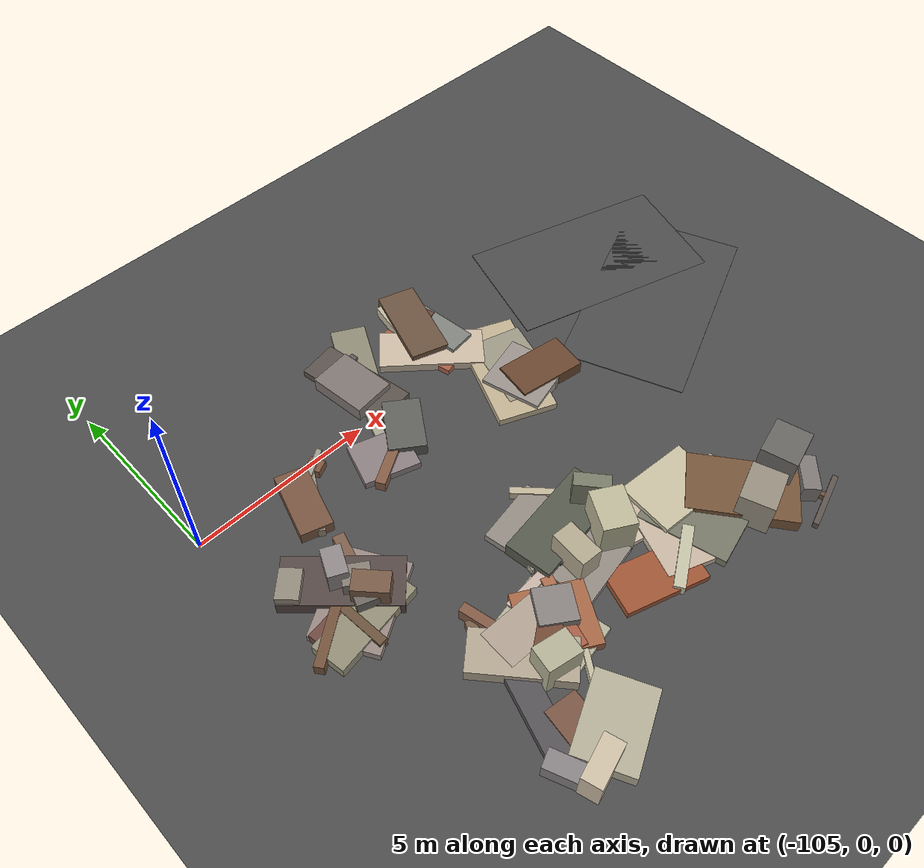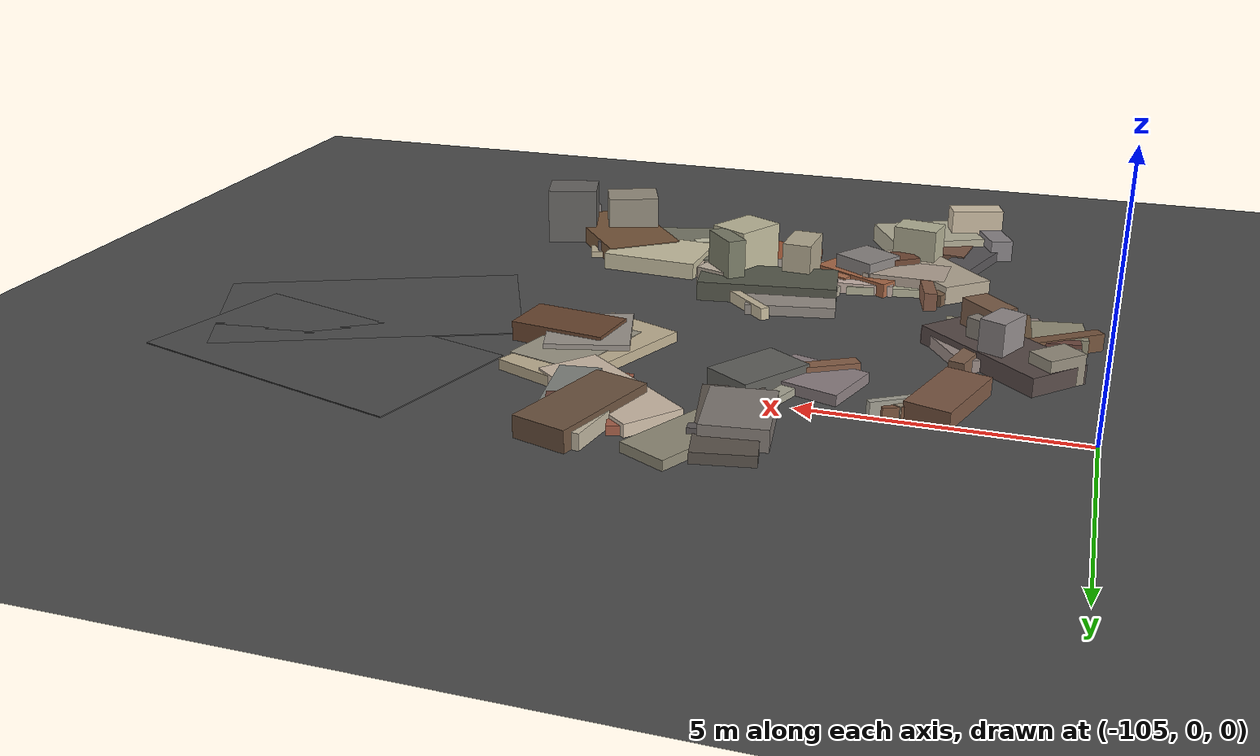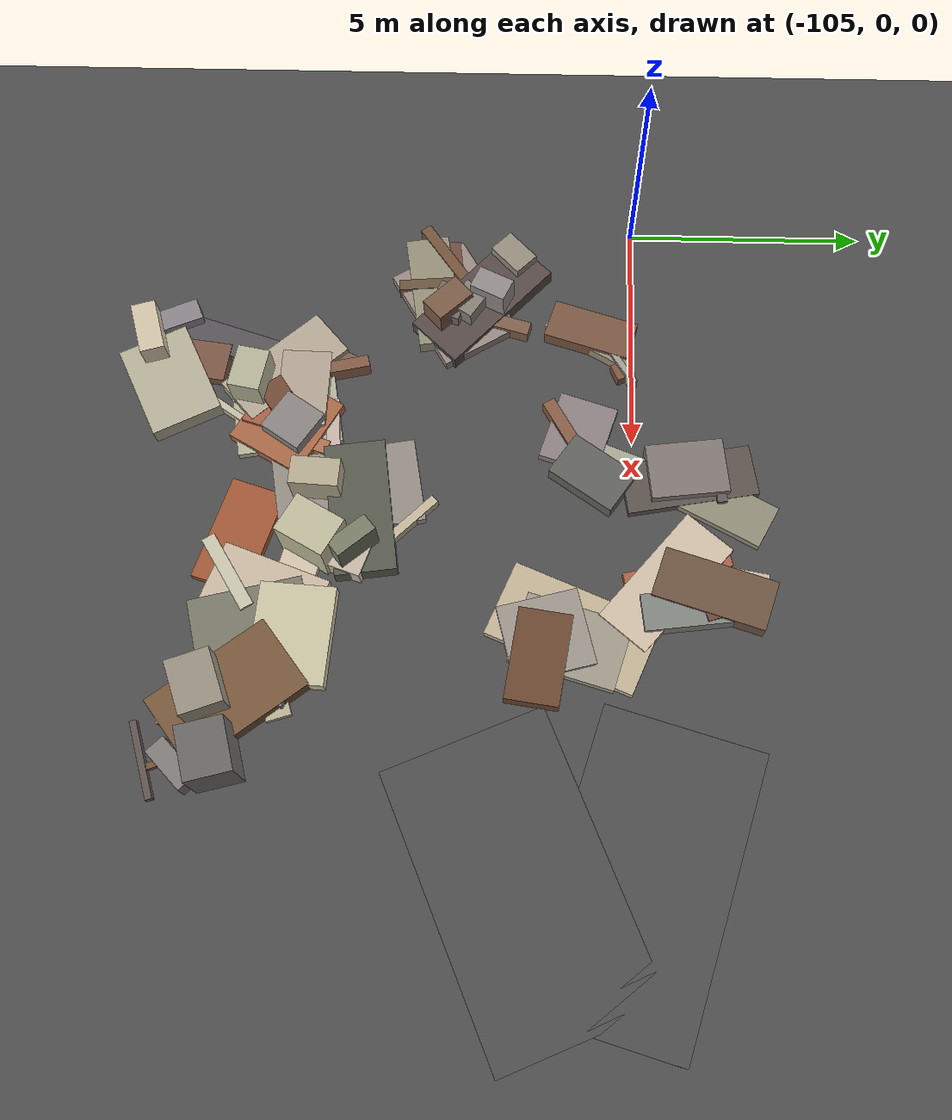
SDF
<sdf version="1.6">
 <world name="navitas_arena">
  <model name="ground_plane">
   <static>true</static>
   <link name="link">
    <collision name="collision">
     <geometry><plane><normal>0 0 1</normal><size>400 400</size></plane></geometry>
     <surface><friction><ode><mu>0.800</mu><mu2>0.800</mu2></ode></friction></surface>
    </collision>
    <visual name="visual">
     <cast_shadows>false</cast_shadows>
     <geometry><plane><normal>0 0 1</normal><size>400 400</size></plane></geometry>
     <material>
      <specular>0.04 0.04 0.04 1</specular>
      <script>
       <uri>file://media/materials/scripts/navitas_asphalt.material</uri>
       <name>Navitas/RealArenaAsphalt</name>
      </script>
     </material>
    </visual>
   </link>
  </model>
  <model name="road_kolay_2_7">
   <static>true</static>
   <pose>-90.909 -2.167 0.040 0 0 1.980</pose>
   <link name="link">
    <collision name="col"><geometry><box><size>3.443 6.000 0.020</size></box></geometry></collision>
    <visual name="vis">
     <geometry><box><size>3.443 6.000 0.020</size></box></geometry>
     <material>
      <specular>0.04 0.04 0.04 1</specular>
      <script>
       <uri>file://media/materials/scripts/navitas_asphalt.material</uri>
       <name>Navitas/RealArenaAsphalt</name>
      </script>
     </material>
    </visual>
   </link>
  </model>
  <model name="road_kolay_2_8">
   <static>true</static>
   <pose>-91.073 0.167 0.040 0 0 1.286</pose>
   <link name="link">
    <collision name="col"><geometry><box><size>3.331 6.000 0.020</size></box></geometry></collision>
    <visual name="vis">
     <geometry><box><size>3.331 6.000 0.020</size></box></geometry>
     <material>
      <specular>0.04 0.04 0.04 1</specular>
      <script>
       <uri>file://media/materials/scripts/navitas_asphalt.material</uri>
       <name>Navitas/RealArenaAsphalt</name>
      </script>
     </material>
    </visual>
   </link>
  </model>
  <model name="deb_kolay_1">
   <static>true</static>
   <pose>-99.852 -1.188 0.000 0 0 0</pose>
   <link name="link">
    <collision name="col_0">
     <pose>-0.307 0.060 0.106 0.000 0.000 2.832</pose>
     <geometry><box><size>1.509 1.248 0.212</size></box></geometry>
    </collision>
    <visual name="vis_0">
     <pose>-0.307 0.060 0.106 0.000 0.000 2.832</pose>
     <geometry><box><size>1.509 1.248 0.212</size></box></geometry>
     <material>
      <ambient>0.51 0.47 0.47 1</ambient>
      <diffuse>0.55 0.50 0.51 1</diffuse>
      <specular>0.05 0.05 0.045 1</specular>
     </material>
    </visual>
    <collision name="col_1">
     <pose>-0.381 -0.234 0.156 0.000 0.000 0.533</pose>
     <geometry><box><size>1.362 0.273 0.312</size></box></geometry>
    </collision>
    <visual name="vis_1">
     <pose>-0.381 -0.234 0.156 0.000 0.000 0.533</pose>
     <geometry><box><size>1.362 0.273 0.312</size></box></geometry>
     <material>
      <ambient>0.49 0.34 0.26 1</ambient>
      <diffuse>0.53 0.37 0.28 1</diffuse>
      <specular>0.05 0.05 0.045 1</specular>
     </material>
    </visual>
    <collision name="col_2">
     <pose>0.653 0.355 0.183 0.000 0.000 0.971</pose>
     <geometry><box><size>1.539 0.993 0.367</size></box></geometry>
    </collision>
    <visual name="vis_2">
     <pose>0.653 0.355 0.183 0.000 0.000 0.971</pose>
     <geometry><box><size>1.539 0.993 0.367</size></box></geometry>
     <material>
      <ambient>0.35 0.35 0.34 1</ambient>
      <diffuse>0.38 0.38 0.36 1</diffuse>
      <specular>0.05 0.05 0.045 1</specular>
     </material>
    </visual>
    <collision name="col_3">
     <pose>0.085 -0.298 0.088 0.000 0.000 1.772</pose>
     <geometry><box><size>0.350 0.255 0.176</size></box></geometry>
    </collision>
    <visual name="vis_3">
     <pose>0.085 -0.298 0.088 0.000 0.000 1.772</pose>
     <geometry><box><size>0.350 0.255 0.176</size></box></geometry>
     <material>
      <ambient>0.41 0.29 0.22 1</ambient>
      <diffuse>0.44 0.31 0.24 1</diffuse>
      <specular>0.05 0.05 0.045 1</specular>
     </material>
    </visual>
    <collision name="col_4">
     <pose>0.023 0.510 0.072 0.000 0.000 1.198</pose>
     <geometry><box><size>1.916 0.276 0.143</size></box></geometry>
    </collision>
    <visual name="vis_4">
     <pose>0.023 0.510 0.072 0.000 0.000 1.198</pose>
     <geometry><box><size>1.916 0.276 0.143</size></box></geometry>
     <material>
      <ambient>0.61 0.60 0.54 1</ambient>
      <diffuse>0.66 0.65 0.58 1</diffuse>
      <specular>0.05 0.05 0.045 1</specular>
     </material>
    </visual>
   </link>
  </model>
  <model name="deb_kolay_58">
   <static>true</static>
   <pose>-95.617 -1.908 0.000 0 0 0</pose>
   <link name="link">
    <collision name="col_0">
     <pose>0.353 0.017 0.192 0.000 0.000 -0.145</pose>
     <geometry><box><size>1.892 1.101 0.384</size></box></geometry>
    </collision>
    <visual name="vis_0">
     <pose>0.353 0.017 0.192 0.000 0.000 -0.145</pose>
     <geometry><box><size>1.892 1.101 0.384</size></box></geometry>
     <material>
      <ambient>0.39 0.26 0.18 1</ambient>
      <diffuse>0.42 0.28 0.19 1</diffuse>
      <specular>0.05 0.05 0.045 1</specular>
     </material>
    </visual>
    <collision name="col_1">
     <pose>-0.016 0.644 0.109 0.000 0.000 1.285</pose>
     <geometry><box><size>2.206 1.440 0.218</size></box></geometry>
    </collision>
    <visual name="vis_1">
     <pose>-0.016 0.644 0.109 0.000 0.000 1.285</pose>
     <geometry><box><size>2.206 1.440 0.218</size></box></geometry>
     <material>
      <ambient>0.57 0.55 0.49 1</ambient>
      <diffuse>0.62 0.60 0.53 1</diffuse>
      <specular>0.05 0.05 0.045 1</specular>
     </material>
    </visual>
    <collision name="col_2">
     <pose>-0.293 0.699 0.103 0.000 0.000 1.177</pose>
     <geometry><box><size>3.187 1.616 0.205</size></box></geometry>
    </collision>
    <visual name="vis_2">
     <pose>-0.293 0.699 0.103 0.000 0.000 1.177</pose>
     <geometry><box><size>3.187 1.616 0.205</size></box></geometry>
     <material>
      <ambient>0.70 0.65 0.54 1</ambient>
      <diffuse>0.76 0.70 0.58 1</diffuse>
      <specular>0.05 0.05 0.045 1</specular>
     </material>
    </visual>
    <collision name="col_3">
     <pose>-0.102 0.157 0.158 0.000 0.000 0.258</pose>
     <geometry><box><size>1.601 1.672 0.315</size></box></geometry>
    </collision>
    <visual name="vis_3">
     <pose>-0.102 0.157 0.158 0.000 0.000 0.258</pose>
     <geometry><box><size>1.601 1.672 0.315</size></box></geometry>
     <material>
      <ambient>0.56 0.54 0.51 1</ambient>
      <diffuse>0.61 0.58 0.55 1</diffuse>
      <specular>0.05 0.05 0.045 1</specular>
     </material>
    </visual>
   </link>
  </model>
  <model name="deb_kolay_63">
   <static>true</static>
   <pose>-100.296 -6.668 0.000 0 0 0</pose>
   <link name="link">
    <collision name="col_0">
     <pose>-0.186 -0.592 0.086 0.000 0.000 1.747</pose>
     <geometry><box><size>2.184 1.575 0.173</size></box></geometry>
    </collision>
    <visual name="vis_0">
     <pose>-0.186 -0.592 0.086 0.000 0.000 1.747</pose>
     <geometry><box><size>2.184 1.575 0.173</size></box></geometry>
     <material>
      <ambient>0.65 0.65 0.55 1</ambient>
      <diffuse>0.71 0.70 0.60 1</diffuse>
      <specular>0.05 0.05 0.045 1</specular>
     </material>
    </visual>
    <collision name="col_1">
     <pose>0.130 -0.382 0.292 0.000 0.000 0.984</pose>
     <geometry><box><size>0.940 0.942 0.583</size></box></geometry>
    </collision>
    <visual name="vis_1">
     <pose>0.130 -0.382 0.292 0.000 0.000 0.984</pose>
     <geometry><box><size>0.940 0.942 0.583</size></box></geometry>
     <material>
      <ambient>0.50 0.48 0.47 1</ambient>
      <diffuse>0.54 0.52 0.51 1</diffuse>
      <specular>0.05 0.05 0.045 1</specular>
     </material>
    </visual>
    <collision name="col_2">
     <pose>-0.367 -0.681 0.253 0.000 0.000 2.182</pose>
     <geometry><box><size>0.564 0.959 0.506</size></box></geometry>
    </collision>
    <visual name="vis_2">
     <pose>-0.367 -0.681 0.253 0.000 0.000 2.182</pose>
     <geometry><box><size>0.564 0.959 0.506</size></box></geometry>
     <material>
      <ambient>0.41 0.27 0.20 1</ambient>
      <diffuse>0.45 0.29 0.21 1</diffuse>
      <specular>0.05 0.05 0.045 1</specular>
     </material>
    </visual>
    <collision name="col_3">
     <pose>-0.718 -0.243 0.190 0.000 0.000 3.111</pose>
     <geometry><box><size>1.686 1.043 0.381</size></box></geometry>
    </collision>
    <visual name="vis_3">
     <pose>-0.718 -0.243 0.190 0.000 0.000 3.111</pose>
     <geometry><box><size>1.686 1.043 0.381</size></box></geometry>
     <material>
      <ambient>0.65 0.59 0.54 1</ambient>
      <diffuse>0.70 0.64 0.58 1</diffuse>
      <specular>0.05 0.05 0.045 1</specular>
     </material>
    </visual>
    <collision name="col_4">
     <pose>0.400 -0.288 0.133 0.000 0.000 1.242</pose>
     <geometry><box><size>1.317 0.309 0.266</size></box></geometry>
    </collision>
    <visual name="vis_4">
     <pose>0.400 -0.288 0.133 0.000 0.000 1.242</pose>
     <geometry><box><size>1.317 0.309 0.266</size></box></geometry>
     <material>
      <ambient>0.63 0.41 0.29 1</ambient>
      <diffuse>0.68 0.44 0.31 1</diffuse>
      <specular>0.05 0.05 0.045 1</specular>
     </material>
    </visual>
   </link>
  </model>
  <model name="deb_kolay_67">
   <static>true</static>
   <pose>-99.071 -5.970 0.000 0 0 0</pose>
   <link name="link">
    <collision name="col_0">
     <pose>0.045 -0.238 0.165 0.000 0.000 1.242</pose>
     <geometry><box><size>0.399 0.281 0.331</size></box></geometry>
    </collision>
    <visual name="vis_0">
     <pose>0.045 -0.238 0.165 0.000 0.000 1.242</pose>
     <geometry><box><size>0.399 0.281 0.331</size></box></geometry>
     <material>
      <ambient>0.33 0.34 0.30 1</ambient>
      <diffuse>0.36 0.36 0.32 1</diffuse>
      <specular>0.05 0.05 0.045 1</specular>
     </material>
    </visual>
    <collision name="col_1">
     <pose>-0.101 0.028 0.100 0.000 0.000 -0.191</pose>
     <geometry><box><size>1.174 0.311 0.201</size></box></geometry>
    </collision>
    <visual name="vis_1">
     <pose>-0.101 0.028 0.100 0.000 0.000 -0.191</pose>
     <geometry><box><size>1.174 0.311 0.201</size></box></geometry>
     <material>
      <ambient>0.65 0.62 0.56 1</ambient>
      <diffuse>0.70 0.67 0.60 1</diffuse>
      <specular>0.05 0.05 0.045 1</specular>
     </material>
    </visual>
    <collision name="col_2">
     <pose>0.213 -0.486 0.498 0.000 0.000 1.512</pose>
     <geometry><box><size>1.006 0.596 0.996</size></box></geometry>
    </collision>
    <visual name="vis_2">
     <pose>0.213 -0.486 0.498 0.000 0.000 1.512</pose>
     <geometry><box><size>1.006 0.596 0.996</size></box></geometry>
     <material>
      <ambient>0.66 0.62 0.53 1</ambient>
      <diffuse>0.71 0.67 0.57 1</diffuse>
      <specular>0.05 0.05 0.045 1</specular>
     </material>
    </visual>
    <collision name="col_3">
     <pose>0.229 0.039 0.099 0.000 0.000 1.504</pose>
     <geometry><box><size>1.647 1.361 0.197</size></box></geometry>
    </collision>
    <visual name="vis_3">
     <pose>0.229 0.039 0.099 0.000 0.000 1.504</pose>
     <geometry><box><size>1.647 1.361 0.197</size></box></geometry>
     <material>
      <ambient>0.49 0.37 0.26 1</ambient>
      <diffuse>0.53 0.40 0.28 1</diffuse>
      <specular>0.05 0.05 0.045 1</specular>
     </material>
    </visual>
    <collision name="col_4">
     <pose>0.298 0.109 0.107 0.000 0.000 1.749</pose>
     <geometry><box><size>2.983 1.799 0.214</size></box></geometry>
    </collision>
    <visual name="vis_4">
     <pose>0.298 0.109 0.107 0.000 0.000 1.749</pose>
     <geometry><box><size>2.983 1.799 0.214</size></box></geometry>
     <material>
      <ambient>0.54 0.51 0.48 1</ambient>
      <diffuse>0.58 0.55 0.52 1</diffuse>
      <specular>0.05 0.05 0.045 1</specular>
     </material>
    </visual>
   </link>
  </model>
  <model name="deb_kolay_73">
   <static>true</static>
   <pose>-103.165 -3.634 0.000 0 0 0</pose>
   <link name="link">
    <collision name="col_0">
     <pose>-0.045 0.630 0.498 0.000 0.000 2.704</pose>
     <geometry><box><size>0.503 0.780 0.996</size></box></geometry>
    </collision>
    <visual name="vis_0">
     <pose>-0.045 0.630 0.498 0.000 0.000 2.704</pose>
     <geometry><box><size>0.503 0.780 0.996</size></box></geometry>
     <material>
      <ambient>0.53 0.50 0.50 1</ambient>
      <diffuse>0.57 0.54 0.54 1</diffuse>
      <specular>0.05 0.05 0.045 1</specular>
     </material>
    </visual>
    <collision name="col_1">
     <pose>0.162 -0.265 0.323 0.000 0.000 2.788</pose>
     <geometry><box><size>0.753 0.680 0.645</size></box></geometry>
    </collision>
    <visual name="vis_1">
     <pose>0.162 -0.265 0.323 0.000 0.000 2.788</pose>
     <geometry><box><size>0.753 0.680 0.645</size></box></geometry>
     <material>
      <ambient>0.40 0.38 0.36 1</ambient>
      <diffuse>0.44 0.41 0.39 1</diffuse>
      <specular>0.05 0.05 0.045 1</specular>
     </material>
    </visual>
    <collision name="col_2">
     <pose>0.262 -0.288 0.450 0.000 0.000 3.891</pose>
     <geometry><box><size>0.559 0.911 0.899</size></box></geometry>
    </collision>
    <visual name="vis_2">
     <pose>0.262 -0.288 0.450 0.000 0.000 3.891</pose>
     <geometry><box><size>0.559 0.911 0.899</size></box></geometry>
     <material>
      <ambient>0.44 0.34 0.26 1</ambient>
      <diffuse>0.48 0.36 0.28 1</diffuse>
      <specular>0.05 0.05 0.045 1</specular>
     </material>
    </visual>
    <collision name="col_3">
     <pose>0.178 0.145 0.374 0.000 0.000 2.555</pose>
     <geometry><box><size>0.684 0.566 0.748</size></box></geometry>
    </collision>
    <visual name="vis_3">
     <pose>0.178 0.145 0.374 0.000 0.000 2.555</pose>
     <geometry><box><size>0.684 0.566 0.748</size></box></geometry>
     <material>
      <ambient>0.49 0.47 0.43 1</ambient>
      <diffuse>0.53 0.50 0.46 1</diffuse>
      <specular>0.05 0.05 0.045 1</specular>
     </material>
    </visual>
    <collision name="col_4">
     <pose>-0.433 -0.346 0.168 0.000 0.000 1.653</pose>
     <geometry><box><size>2.092 0.234 0.336</size></box></geometry>
    </collision>
    <visual name="vis_4">
     <pose>-0.433 -0.346 0.168 0.000 0.000 1.653</pose>
     <geometry><box><size>2.092 0.234 0.336</size></box></geometry>
     <material>
      <ambient>0.39 0.31 0.23 1</ambient>
      <diffuse>0.42 0.33 0.24 1</diffuse>
      <specular>0.05 0.05 0.045 1</specular>
     </material>
    </visual>
    <collision name="col_5">
     <pose>0.000 -0.183 0.119 0.000 0.000 3.680</pose>
     <geometry><box><size>2.418 1.750 0.238</size></box></geometry>
    </collision>
    <visual name="vis_5">
     <pose>0.000 -0.183 0.119 0.000 0.000 3.680</pose>
     <geometry><box><size>2.418 1.750 0.238</size></box></geometry>
     <material>
      <ambient>0.55 0.50 0.48 1</ambient>
      <diffuse>0.60 0.54 0.52 1</diffuse>
      <specular>0.05 0.05 0.045 1</specular>
     </material>
    </visual>
   </link>
  </model>
  <model name="deb_kolay_92">
   <static>true</static>
   <pose>-96.822 1.190 0.000 0 0 0</pose>
   <link name="link">
    <collision name="col_0">
     <pose>-0.071 -0.532 0.123 0.000 0.000 2.447</pose>
     <geometry><box><size>2.832 1.189 0.246</size></box></geometry>
    </collision>
    <visual name="vis_0">
     <pose>-0.071 -0.532 0.123 0.000 0.000 2.447</pose>
     <geometry><box><size>2.832 1.189 0.246</size></box></geometry>
     <material>
      <ambient>0.75 0.68 0.61 1</ambient>
      <diffuse>0.81 0.74 0.66 1</diffuse>
      <specular>0.05 0.05 0.045 1</specular>
     </material>
    </visual>
    <collision name="col_1">
     <pose>0.000 0.401 0.155 0.000 0.000 1.395</pose>
     <geometry><box><size>2.141 0.878 0.310</size></box></geometry>
    </collision>
    <visual name="vis_1">
     <pose>0.000 0.401 0.155 0.000 0.000 1.395</pose>
     <geometry><box><size>2.141 0.878 0.310</size></box></geometry>
     <material>
      <ambient>0.72 0.68 0.59 1</ambient>
      <diffuse>0.77 0.73 0.64 1</diffuse>
      <specular>0.05 0.05 0.045 1</specular>
     </material>
    </visual>
    <collision name="col_2">
     <pose>0.100 0.416 0.206 0.000 0.000 1.265</pose>
     <geometry><box><size>2.359 1.058 0.412</size></box></geometry>
    </collision>
    <visual name="vis_2">
     <pose>0.100 0.416 0.206 0.000 0.000 1.265</pose>
     <geometry><box><size>2.359 1.058 0.412</size></box></geometry>
     <material>
      <ambient>0.40 0.30 0.23 1</ambient>
      <diffuse>0.43 0.33 0.25 1</diffuse>
      <specular>0.05 0.05 0.045 1</specular>
     </material>
    </visual>
    <collision name="col_3">
     <pose>-0.359 -0.297 0.089 0.000 0.000 1.794</pose>
     <geometry><box><size>2.228 0.297 0.178</size></box></geometry>
    </collision>
    <visual name="vis_3">
     <pose>-0.359 -0.297 0.089 0.000 0.000 1.794</pose>
     <geometry><box><size>2.228 0.297 0.178</size></box></geometry>
     <material>
      <ambient>0.61 0.35 0.27 1</ambient>
      <diffuse>0.66 0.38 0.29 1</diffuse>
      <specular>0.05 0.05 0.045 1</specular>
     </material>
    </visual>
    <collision name="col_4">
     <pose>-0.136 -0.335 0.073 0.000 0.000 2.612</pose>
     <geometry><box><size>0.418 0.202 0.146</size></box></geometry>
    </collision>
    <visual name="vis_4">
     <pose>-0.136 -0.335 0.073 0.000 0.000 2.612</pose>
     <geometry><box><size>0.418 0.202 0.146</size></box></geometry>
     <material>
      <ambient>0.47 0.43 0.41 1</ambient>
      <diffuse>0.51 0.46 0.44 1</diffuse>
      <specular>0.05 0.05 0.045 1</specular>
     </material>
    </visual>
    <collision name="col_5">
     <pose>0.285 0.315 0.197 0.000 0.000 3.435</pose>
     <geometry><box><size>0.919 0.379 0.394</size></box></geometry>
    </collision>
    <visual name="vis_5">
     <pose>0.285 0.315 0.197 0.000 0.000 3.435</pose>
     <geometry><box><size>0.919 0.379 0.394</size></box></geometry>
     <material>
      <ambient>0.40 0.26 0.21 1</ambient>
      <diffuse>0.43 0.28 0.23 1</diffuse>
      <specular>0.05 0.05 0.045 1</specular>
     </material>
    </visual>
    <collision name="col_6">
     <pose>0.479 0.044 0.177 0.000 0.000 1.696</pose>
     <geometry><box><size>2.174 0.767 0.354</size></box></geometry>
    </collision>
    <visual name="vis_6">
     <pose>0.479 0.044 0.177 0.000 0.000 1.696</pose>
     <geometry><box><size>2.174 0.767 0.354</size></box></geometry>
     <material>
      <ambient>0.47 0.48 0.47 1</ambient>
      <diffuse>0.51 0.52 0.50 1</diffuse>
      <specular>0.05 0.05 0.045 1</specular>
     </material>
    </visual>
   </link>
  </model>
  <model name="deb_kolay_105">
   <static>true</static>
   <pose>-100.797 -6.615 0.000 0 0 0</pose>
   <link name="link">
    <collision name="col_0">
     <pose>-1.108 0.320 0.174 0.000 0.000 -0.724</pose>
     <geometry><box><size>0.287 0.173 0.348</size></box></geometry>
    </collision>
    <visual name="vis_0">
     <pose>-1.108 0.320 0.174 0.000 0.000 -0.724</pose>
     <geometry><box><size>0.287 0.173 0.348</size></box></geometry>
     <material>
      <ambient>0.32 0.30 0.28 1</ambient>
      <diffuse>0.35 0.32 0.30 1</diffuse>
      <specular>0.05 0.05 0.045 1</specular>
     </material>
    </visual>
    <collision name="col_1">
     <pose>0.308 -0.426 0.181 0.000 0.000 0.234</pose>
     <geometry><box><size>1.250 0.264 0.361</size></box></geometry>
    </collision>
    <visual name="vis_1">
     <pose>0.308 -0.426 0.181 0.000 0.000 0.234</pose>
     <geometry><box><size>1.250 0.264 0.361</size></box></geometry>
     <material>
      <ambient>0.61 0.59 0.53 1</ambient>
      <diffuse>0.66 0.64 0.57 1</diffuse>
      <specular>0.05 0.05 0.045 1</specular>
     </material>
    </visual>
    <collision name="col_2">
     <pose>0.858 0.375 0.113 0.000 0.000 0.080</pose>
     <geometry><box><size>1.762 0.270 0.226</size></box></geometry>
    </collision>
    <visual name="vis_2">
     <pose>0.858 0.375 0.113 0.000 0.000 0.080</pose>
     <geometry><box><size>1.762 0.270 0.226</size></box></geometry>
     <material>
      <ambient>0.73 0.66 0.62 1</ambient>
      <diffuse>0.79 0.71 0.67 1</diffuse>
      <specular>0.05 0.05 0.045 1</specular>
     </material>
    </visual>
    <collision name="col_3">
     <pose>-0.669 0.152 0.187 0.000 0.000 1.792</pose>
     <geometry><box><size>1.809 0.258 0.375</size></box></geometry>
    </collision>
    <visual name="vis_3">
     <pose>-0.669 0.152 0.187 0.000 0.000 1.792</pose>
     <geometry><box><size>1.809 0.258 0.375</size></box></geometry>
     <material>
      <ambient>0.49 0.33 0.26 1</ambient>
      <diffuse>0.52 0.36 0.28 1</diffuse>
      <specular>0.05 0.05 0.045 1</specular>
     </material>
    </visual>
    <collision name="col_4">
     <pose>-0.994 0.534 0.122 0.000 0.000 -0.389</pose>
     <geometry><box><size>0.259 0.368 0.243</size></box></geometry>
    </collision>
    <visual name="vis_4">
     <pose>-0.994 0.534 0.122 0.000 0.000 -0.389</pose>
     <geometry><box><size>0.259 0.368 0.243</size></box></geometry>
     <material>
      <ambient>0.44 0.35 0.26 1</ambient>
      <diffuse>0.48 0.37 0.28 1</diffuse>
      <specular>0.05 0.05 0.045 1</specular>
     </material>
    </visual>
    <collision name="col_5">
     <pose>1.060 -0.119 0.081 0.000 0.000 -0.732</pose>
     <geometry><box><size>0.357 0.174 0.161</size></box></geometry>
    </collision>
    <visual name="vis_5">
     <pose>1.060 -0.119 0.081 0.000 0.000 -0.732</pose>
     <geometry><box><size>0.357 0.174 0.161</size></box></geometry>
     <material>
      <ambient>0.40 0.39 0.34 1</ambient>
      <diffuse>0.43 0.42 0.37 1</diffuse>
      <specular>0.05 0.05 0.045 1</specular>
     </material>
    </visual>
   </link>
  </model>
  <model name="deb_kolay_107">
   <static>true</static>
   <pose>-98.972 1.245 0.000 0 0 0</pose>
   <link name="link">
    <collision name="col_0">
     <pose>-0.338 -0.139 0.204 0.000 0.000 1.691</pose>
     <geometry><box><size>1.613 1.178 0.407</size></box></geometry>
    </collision>
    <visual name="vis_0">
     <pose>-0.338 -0.139 0.204 0.000 0.000 1.691</pose>
     <geometry><box><size>1.613 1.178 0.407</size></box></geometry>
     <material>
      <ambient>0.46 0.44 0.42 1</ambient>
      <diffuse>0.50 0.47 0.45 1</diffuse>
      <specular>0.05 0.05 0.045 1</specular>
     </material>
    </visual>
    <collision name="col_1">
     <pose>0.245 0.372 0.095 0.000 0.000 1.084</pose>
     <geometry><box><size>2.604 0.956 0.191</size></box></geometry>
    </collision>
    <visual name="vis_1">
     <pose>0.245 0.372 0.095 0.000 0.000 1.084</pose>
     <geometry><box><size>2.604 0.956 0.191</size></box></geometry>
     <material>
      <ambient>0.53 0.51 0.43 1</ambient>
      <diffuse>0.57 0.55 0.47 1</diffuse>
      <specular>0.05 0.05 0.045 1</specular>
     </material>
    </visual>
    <collision name="col_2">
     <pose>-0.179 -0.087 0.103 0.000 0.000 1.748</pose>
     <geometry><box><size>2.737 1.099 0.205</size></box></geometry>
    </collision>
    <visual name="vis_2">
     <pose>-0.179 -0.087 0.103 0.000 0.000 1.748</pose>
     <geometry><box><size>2.737 1.099 0.205</size></box></geometry>
     <material>
      <ambient>0.33 0.31 0.28 1</ambient>
      <diffuse>0.36 0.33 0.30 1</diffuse>
      <specular>0.05 0.05 0.045 1</specular>
     </material>
    </visual>
    <collision name="col_3">
     <pose>0.235 0.567 0.149 0.000 0.000 3.252</pose>
     <geometry><box><size>0.228 0.207 0.299</size></box></geometry>
    </collision>
    <visual name="vis_3">
     <pose>0.235 0.567 0.149 0.000 0.000 3.252</pose>
     <geometry><box><size>0.228 0.207 0.299</size></box></geometry>
     <material>
      <ambient>0.34 0.32 0.32 1</ambient>
      <diffuse>0.37 0.35 0.35 1</diffuse>
      <specular>0.05 0.05 0.045 1</specular>
     </material>
    </visual>
    <collision name="col_4">
     <pose>-0.087 -0.021 0.075 0.000 0.000 3.126</pose>
     <geometry><box><size>0.252 0.229 0.150</size></box></geometry>
    </collision>
    <visual name="vis_4">
     <pose>-0.087 -0.021 0.075 0.000 0.000 3.126</pose>
     <geometry><box><size>0.252 0.229 0.150</size></box></geometry>
     <material>
      <ambient>0.58 0.33 0.19 1</ambient>
      <diffuse>0.62 0.36 0.21 1</diffuse>
      <specular>0.05 0.05 0.045 1</specular>
     </material>
    </visual>
   </link>
  </model>
  <model name="deb_kolay_112">
   <static>true</static>
   <pose>-100.660 -7.542 0.000 0 0 0</pose>
   <link name="link">
    <collision name="col_0">
     <pose>0.060 -0.129 0.184 0.000 0.000 2.853</pose>
     <geometry><box><size>0.962 0.704 0.369</size></box></geometry>
    </collision>
    <visual name="vis_0">
     <pose>0.060 -0.129 0.184 0.000 0.000 2.853</pose>
     <geometry><box><size>0.962 0.704 0.369</size></box></geometry>
     <material>
      <ambient>0.61 0.34 0.26 1</ambient>
      <diffuse>0.66 0.37 0.28 1</diffuse>
      <specular>0.05 0.05 0.045 1</specular>
     </material>
    </visual>
    <collision name="col_1">
     <pose>0.670 0.219 0.138 0.000 0.000 3.327</pose>
     <geometry><box><size>0.240 0.441 0.276</size></box></geometry>
    </collision>
    <visual name="vis_1">
     <pose>0.670 0.219 0.138 0.000 0.000 3.327</pose>
     <geometry><box><size>0.240 0.441 0.276</size></box></geometry>
     <material>
      <ambient>0.46 0.47 0.41 1</ambient>
      <diffuse>0.50 0.50 0.44 1</diffuse>
      <specular>0.05 0.05 0.045 1</specular>
     </material>
    </visual>
    <collision name="col_2">
     <pose>0.371 0.317 0.146 0.000 0.000 1.052</pose>
     <geometry><box><size>1.663 1.791 0.293</size></box></geometry>
    </collision>
    <visual name="vis_2">
     <pose>0.371 0.317 0.146 0.000 0.000 1.052</pose>
     <geometry><box><size>1.663 1.791 0.293</size></box></geometry>
     <material>
      <ambient>0.61 0.38 0.25 1</ambient>
      <diffuse>0.66 0.41 0.28 1</diffuse>
      <specular>0.05 0.05 0.045 1</specular>
     </material>
    </visual>
    <collision name="col_3">
     <pose>0.495 0.333 0.127 0.000 0.000 2.190</pose>
     <geometry><box><size>0.306 0.440 0.253</size></box></geometry>
    </collision>
    <visual name="vis_3">
     <pose>0.495 0.333 0.127 0.000 0.000 2.190</pose>
     <geometry><box><size>0.306 0.440 0.253</size></box></geometry>
     <material>
      <ambient>0.42 0.26 0.20 1</ambient>
      <diffuse>0.46 0.29 0.22 1</diffuse>
      <specular>0.05 0.05 0.045 1</specular>
     </material>
    </visual>
    <collision name="col_4">
     <pose>0.777 -0.094 0.086 0.000 0.000 2.443</pose>
     <geometry><box><size>0.230 0.182 0.173</size></box></geometry>
    </collision>
    <visual name="vis_4">
     <pose>0.777 -0.094 0.086 0.000 0.000 2.443</pose>
     <geometry><box><size>0.230 0.182 0.173</size></box></geometry>
     <material>
      <ambient>0.49 0.51 0.48 1</ambient>
      <diffuse>0.53 0.55 0.52 1</diffuse>
      <specular>0.05 0.05 0.045 1</specular>
     </material>
    </visual>
    <collision name="col_5">
     <pose>0.239 -0.753 0.125 0.000 0.000 0.979</pose>
     <geometry><box><size>1.894 0.140 0.249</size></box></geometry>
    </collision>
    <visual name="vis_5">
     <pose>0.239 -0.753 0.125 0.000 0.000 0.979</pose>
     <geometry><box><size>1.894 0.140 0.249</size></box></geometry>
     <material>
      <ambient>0.72 0.69 0.60 1</ambient>
      <diffuse>0.77 0.74 0.64 1</diffuse>
      <specular>0.05 0.05 0.045 1</specular>
     </material>
    </visual>
   </link>
  </model>
  <model name="deb_kolay_136">
   <static>true</static>
   <pose>-93.872 -8.610 0.000 0 0 0</pose>
   <link name="link">
    <collision name="col_0">
     <pose>0.706 0.510 0.604 0.000 0.000 0.263</pose>
     <geometry><box><size>1.098 0.950 1.209</size></box></geometry>
    </collision>
    <visual name="vis_0">
     <pose>0.706 0.510 0.604 0.000 0.000 0.263</pose>
     <geometry><box><size>1.098 0.950 1.209</size></box></geometry>
     <material>
      <ambient>0.38 0.37 0.36 1</ambient>
      <diffuse>0.41 0.40 0.39 1</diffuse>
      <specular>0.05 0.05 0.045 1</specular>
     </material>
    </visual>
    <collision name="col_1">
     <pose>0.619 -0.099 0.076 0.000 0.000 1.936</pose>
     <geometry><box><size>1.714 0.131 0.152</size></box></geometry>
    </collision>
    <visual name="vis_1">
     <pose>0.619 -0.099 0.076 0.000 0.000 1.936</pose>
     <geometry><box><size>1.714 0.131 0.152</size></box></geometry>
     <material>
      <ambient>0.41 0.29 0.21 1</ambient>
      <diffuse>0.44 0.32 0.22 1</diffuse>
      <specular>0.05 0.05 0.045 1</specular>
     </material>
    </visual>
    <collision name="col_2">
     <pose>-0.217 -0.578 0.079 0.000 0.000 0.420</pose>
     <geometry><box><size>0.403 0.400 0.157</size></box></geometry>
    </collision>
    <visual name="vis_2">
     <pose>-0.217 -0.578 0.079 0.000 0.000 0.420</pose>
     <geometry><box><size>0.403 0.400 0.157</size></box></geometry>
     <material>
      <ambient>0.72 0.68 0.60 1</ambient>
      <diffuse>0.78 0.73 0.65 1</diffuse>
      <specular>0.05 0.05 0.045 1</specular>
     </material>
    </visual>
    <collision name="col_3">
     <pose>-0.561 0.661 0.184 0.000 0.000 2.228</pose>
     <geometry><box><size>2.768 1.642 0.369</size></box></geometry>
    </collision>
    <visual name="vis_3">
     <pose>-0.561 0.661 0.184 0.000 0.000 2.228</pose>
     <geometry><box><size>2.768 1.642 0.369</size></box></geometry>
     <material>
      <ambient>0.43 0.32 0.21 1</ambient>
      <diffuse>0.47 0.34 0.23 1</diffuse>
      <specular>0.05 0.05 0.045 1</specular>
     </material>
    </visual>
    <collision name="col_4">
     <pose>0.761 -0.914 0.092 0.000 0.000 0.304</pose>
     <geometry><box><size>1.589 0.138 0.184</size></box></geometry>
    </collision>
    <visual name="vis_4">
     <pose>0.761 -0.914 0.092 0.000 0.000 0.304</pose>
     <geometry><box><size>1.589 0.138 0.184</size></box></geometry>
     <material>
      <ambient>0.34 0.30 0.28 1</ambient>
      <diffuse>0.37 0.33 0.31 1</diffuse>
      <specular>0.05 0.05 0.045 1</specular>
     </material>
    </visual>
    <collision name="col_5">
     <pose>-0.614 0.163 0.519 0.000 0.000 0.353</pose>
     <geometry><box><size>1.126 0.896 1.038</size></box></geometry>
    </collision>
    <visual name="vis_5">
     <pose>-0.614 0.163 0.519 0.000 0.000 0.353</pose>
     <geometry><box><size>1.126 0.896 1.038</size></box></geometry>
     <material>
      <ambient>0.55 0.51 0.46 1</ambient>
      <diffuse>0.59 0.56 0.50 1</diffuse>
      <specular>0.05 0.05 0.045 1</specular>
     </material>
    </visual>
    <collision name="col_6">
     <pose>0.878 -0.236 0.267 0.000 0.000 0.772</pose>
     <geometry><box><size>1.016 0.444 0.534</size></box></geometry>
    </collision>
    <visual name="vis_6">
     <pose>0.878 -0.236 0.267 0.000 0.000 0.772</pose>
     <geometry><box><size>1.016 0.444 0.534</size></box></geometry>
     <material>
      <ambient>0.46 0.45 0.43 1</ambient>
      <diffuse>0.50 0.48 0.47 1</diffuse>
      <specular>0.05 0.05 0.045 1</specular>
     </material>
    </visual>
   </link>
  </model>
  <model name="deb_kolay_156">
   <static>true</static>
   <pose>-100.568 -7.643 0.000 0 0 0</pose>
   <link name="link">
    <collision name="col_0">
     <pose>-0.570 -0.016 0.143 0.000 0.000 1.285</pose>
     <geometry><box><size>0.460 0.366 0.285</size></box></geometry>
    </collision>
    <visual name="vis_0">
     <pose>-0.570 -0.016 0.143 0.000 0.000 1.285</pose>
     <geometry><box><size>0.460 0.366 0.285</size></box></geometry>
     <material>
      <ambient>0.63 0.42 0.27 1</ambient>
      <diffuse>0.68 0.45 0.29 1</diffuse>
      <specular>0.05 0.05 0.045 1</specular>
     </material>
    </visual>
    <collision name="col_1">
     <pose>-0.536 -0.314 0.527 0.000 0.000 -0.184</pose>
     <geometry><box><size>0.911 0.669 1.053</size></box></geometry>
    </collision>
    <visual name="vis_1">
     <pose>-0.536 -0.314 0.527 0.000 0.000 -0.184</pose>
     <geometry><box><size>0.911 0.669 1.053</size></box></geometry>
     <material>
      <ambient>0.66 0.65 0.55 1</ambient>
      <diffuse>0.71 0.70 0.59 1</diffuse>
      <specular>0.05 0.05 0.045 1</specular>
     </material>
    </visual>
    <collision name="col_2">
     <pose>-0.495 0.287 0.097 0.000 0.000 -0.105</pose>
     <geometry><box><size>0.459 0.199 0.194</size></box></geometry>
    </collision>
    <visual name="vis_2">
     <pose>-0.495 0.287 0.097 0.000 0.000 -0.105</pose>
     <geometry><box><size>0.459 0.199 0.194</size></box></geometry>
     <material>
      <ambient>0.65 0.63 0.54 1</ambient>
      <diffuse>0.70 0.68 0.58 1</diffuse>
      <specular>0.05 0.05 0.045 1</specular>
     </material>
    </visual>
    <collision name="col_3">
     <pose>-0.919 0.303 0.190 0.000 0.000 -0.849</pose>
     <geometry><box><size>2.528 1.082 0.380</size></box></geometry>
    </collision>
    <visual name="vis_3">
     <pose>-0.919 0.303 0.190 0.000 0.000 -0.849</pose>
     <geometry><box><size>2.528 1.082 0.380</size></box></geometry>
     <material>
      <ambient>0.66 0.61 0.54 1</ambient>
      <diffuse>0.71 0.66 0.58 1</diffuse>
      <specular>0.05 0.05 0.045 1</specular>
     </material>
    </visual>
   </link>
  </model>
  <model name="deb_kolay_161">
   <static>true</static>
   <pose>-103.368 -3.393 0.000 0 0 0</pose>
   <link name="link">
    <collision name="col_0">
     <pose>0.675 0.536 0.161 0.000 0.000 1.300</pose>
     <geometry><box><size>1.369 0.302 0.321</size></box></geometry>
    </collision>
    <visual name="vis_0">
     <pose>0.675 0.536 0.161 0.000 0.000 1.300</pose>
     <geometry><box><size>1.369 0.302 0.321</size></box></geometry>
     <material>
      <ambient>0.46 0.35 0.27 1</ambient>
      <diffuse>0.50 0.38 0.30 1</diffuse>
      <specular>0.05 0.05 0.045 1</specular>
     </material>
    </visual>
    <collision name="col_1">
     <pose>-0.048 -0.875 0.161 0.000 0.000 3.301</pose>
     <geometry><box><size>2.553 0.932 0.321</size></box></geometry>
    </collision>
    <visual name="vis_1">
     <pose>-0.048 -0.875 0.161 0.000 0.000 3.301</pose>
     <geometry><box><size>2.553 0.932 0.321</size></box></geometry>
     <material>
      <ambient>0.54 0.51 0.44 1</ambient>
      <diffuse>0.58 0.56 0.47 1</diffuse>
      <specular>0.05 0.05 0.045 1</specular>
     </material>
    </visual>
    <collision name="col_2">
     <pose>-0.733 -0.422 0.160 0.000 0.000 3.274</pose>
     <geometry><box><size>1.027 0.275 0.321</size></box></geometry>
    </collision>
    <visual name="vis_2">
     <pose>-0.733 -0.422 0.160 0.000 0.000 3.274</pose>
     <geometry><box><size>1.027 0.275 0.321</size></box></geometry>
     <material>
      <ambient>0.40 0.27 0.23 1</ambient>
      <diffuse>0.44 0.29 0.25 1</diffuse>
      <specular>0.05 0.05 0.045 1</specular>
     </material>
    </visual>
    <collision name="col_3">
     <pose>-0.894 -0.621 0.174 0.000 0.000 3.772</pose>
     <geometry><box><size>1.687 0.249 0.349</size></box></geometry>
    </collision>
    <visual name="vis_3">
     <pose>-0.894 -0.621 0.174 0.000 0.000 3.772</pose>
     <geometry><box><size>1.687 0.249 0.349</size></box></geometry>
     <material>
      <ambient>0.43 0.31 0.22 1</ambient>
      <diffuse>0.46 0.33 0.24 1</diffuse>
      <specular>0.05 0.05 0.045 1</specular>
     </material>
    </visual>
    <collision name="col_4">
     <pose>-0.852 0.835 0.293 0.000 0.000 2.346</pose>
     <geometry><box><size>0.566 0.811 0.585</size></box></geometry>
    </collision>
    <visual name="vis_4">
     <pose>-0.852 0.835 0.293 0.000 0.000 2.346</pose>
     <geometry><box><size>0.566 0.811 0.585</size></box></geometry>
     <material>
      <ambient>0.54 0.51 0.46 1</ambient>
      <diffuse>0.58 0.55 0.49 1</diffuse>
      <specular>0.05 0.05 0.045 1</specular>
     </material>
    </visual>
    <collision name="col_5">
     <pose>0.146 0.170 0.182 0.000 0.000 2.391</pose>
     <geometry><box><size>2.953 1.280 0.364</size></box></geometry>
    </collision>
    <visual name="vis_5">
     <pose>0.146 0.170 0.182 0.000 0.000 2.391</pose>
     <geometry><box><size>2.953 1.280 0.364</size></box></geometry>
     <material>
      <ambient>0.32 0.27 0.26 1</ambient>
      <diffuse>0.34 0.29 0.28 1</diffuse>
      <specular>0.05 0.05 0.045 1</specular>
     </material>
    </visual>
   </link>
  </model>
  <model name="deb_kolay_163">
   <static>true</static>
   <pose>-101.565 -9.159 0.000 0 0 0</pose>
   <link name="link">
    <collision name="col_0">
     <pose>-1.032 -0.556 0.232 0.000 0.000 1.967</pose>
     <geometry><box><size>0.998 0.477 0.464</size></box></geometry>
    </collision>
    <visual name="vis_0">
     <pose>-1.032 -0.556 0.232 0.000 0.000 1.967</pose>
     <geometry><box><size>0.998 0.477 0.464</size></box></geometry>
     <material>
      <ambient>0.50 0.49 0.49 1</ambient>
      <diffuse>0.54 0.52 0.53 1</diffuse>
      <specular>0.05 0.05 0.045 1</specular>
     </material>
    </visual>
    <collision name="col_1">
     <pose>-0.577 0.599 0.111 0.000 0.000 1.262</pose>
     <geometry><box><size>2.326 0.671 0.223</size></box></geometry>
    </collision>
    <visual name="vis_1">
     <pose>-0.577 0.599 0.111 0.000 0.000 1.262</pose>
     <geometry><box><size>2.326 0.671 0.223</size></box></geometry>
     <material>
      <ambient>0.31 0.31 0.31 1</ambient>
      <diffuse>0.34 0.33 0.34 1</diffuse>
      <specular>0.05 0.05 0.045 1</specular>
     </material>
    </visual>
    <collision name="col_2">
     <pose>-0.150 -0.135 0.127 0.000 0.000 1.439</pose>
     <geometry><box><size>1.424 0.857 0.254</size></box></geometry>
    </collision>
    <visual name="vis_2">
     <pose>-0.150 -0.135 0.127 0.000 0.000 1.439</pose>
     <geometry><box><size>1.424 0.857 0.254</size></box></geometry>
     <material>
      <ambient>0.44 0.31 0.25 1</ambient>
      <diffuse>0.48 0.34 0.27 1</diffuse>
      <specular>0.05 0.05 0.045 1</specular>
     </material>
    </visual>
    <collision name="col_3">
     <pose>-0.539 -1.030 0.450 0.000 0.000 3.426</pose>
     <geometry><box><size>1.122 0.510 0.900</size></box></geometry>
    </collision>
    <visual name="vis_3">
     <pose>-0.539 -1.030 0.450 0.000 0.000 3.426</pose>
     <geometry><box><size>1.122 0.510 0.900</size></box></geometry>
     <material>
      <ambient>0.76 0.70 0.61 1</ambient>
      <diffuse>0.82 0.76 0.66 1</diffuse>
      <specular>0.05 0.05 0.045 1</specular>
     </material>
    </visual>
    <collision name="col_4">
     <pose>0.439 -0.583 0.198 0.000 0.000 3.604</pose>
     <geometry><box><size>2.063 1.495 0.396</size></box></geometry>
    </collision>
    <visual name="vis_4">
     <pose>0.439 -0.583 0.198 0.000 0.000 3.604</pose>
     <geometry><box><size>2.063 1.495 0.396</size></box></geometry>
     <material>
      <ambient>0.66 0.64 0.56 1</ambient>
      <diffuse>0.71 0.69 0.60 1</diffuse>
      <specular>0.05 0.05 0.045 1</specular>
     </material>
    </visual>
    <collision name="col_5">
     <pose>-0.185 -0.076 0.093 0.000 0.000 3.206</pose>
     <geometry><box><size>0.479 0.198 0.185</size></box></geometry>
    </collision>
    <visual name="vis_5">
     <pose>-0.185 -0.076 0.093 0.000 0.000 3.206</pose>
     <geometry><box><size>0.479 0.198 0.185</size></box></geometry>
     <material>
      <ambient>0.51 0.52 0.47 1</ambient>
      <diffuse>0.55 0.57 0.51 1</diffuse>
      <specular>0.05 0.05 0.045 1</specular>
     </material>
    </visual>
   </link>
  </model>
  <model name="deb_kolay_167">
   <static>true</static>
   <pose>-101.566 -0.499 0.000 0 0 0</pose>
   <link name="link">
    <collision name="col_0">
     <pose>-0.048 0.297 0.124 0.000 0.000 2.010</pose>
     <geometry><box><size>0.399 0.377 0.248</size></box></geometry>
    </collision>
    <visual name="vis_0">
     <pose>-0.048 0.297 0.124 0.000 0.000 2.010</pose>
     <geometry><box><size>0.399 0.377 0.248</size></box></geometry>
     <material>
      <ambient>0.45 0.32 0.23 1</ambient>
      <diffuse>0.49 0.34 0.25 1</diffuse>
      <specular>0.05 0.05 0.045 1</specular>
     </material>
    </visual>
    <collision name="col_1">
     <pose>-0.523 0.013 0.171 0.000 0.000 3.716</pose>
     <geometry><box><size>1.930 0.135 0.341</size></box></geometry>
    </collision>
    <visual name="vis_1">
     <pose>-0.523 0.013 0.171 0.000 0.000 3.716</pose>
     <geometry><box><size>1.930 0.135 0.341</size></box></geometry>
     <material>
      <ambient>0.58 0.58 0.53 1</ambient>
      <diffuse>0.63 0.62 0.57 1</diffuse>
      <specular>0.05 0.05 0.045 1</specular>
     </material>
    </visual>
    <collision name="col_2">
     <pose>-0.649 -0.461 0.131 0.000 0.000 1.055</pose>
     <geometry><box><size>1.967 0.190 0.262</size></box></geometry>
    </collision>
    <visual name="vis_2">
     <pose>-0.649 -0.461 0.131 0.000 0.000 1.055</pose>
     <geometry><box><size>1.967 0.190 0.262</size></box></geometry>
     <material>
      <ambient>0.56 0.51 0.45 1</ambient>
      <diffuse>0.61 0.56 0.48 1</diffuse>
      <specular>0.05 0.05 0.045 1</specular>
     </material>
    </visual>
    <collision name="col_3">
     <pose>-0.947 -0.381 0.173 0.000 0.000 1.273</pose>
     <geometry><box><size>1.828 0.847 0.346</size></box></geometry>
    </collision>
    <visual name="vis_3">
     <pose>-0.947 -0.381 0.173 0.000 0.000 1.273</pose>
     <geometry><box><size>1.828 0.847 0.346</size></box></geometry>
     <material>
      <ambient>0.44 0.31 0.24 1</ambient>
      <diffuse>0.48 0.34 0.26 1</diffuse>
      <specular>0.05 0.05 0.045 1</specular>
     </material>
    </visual>
   </link>
  </model>
  <model name="deb_kolay_174">
   <static>true</static>
   <pose>-96.830 -7.289 0.000 0 0 0</pose>
   <link name="link">
    <collision name="col_0">
     <pose>-0.458 0.555 0.080 0.000 0.000 2.896</pose>
     <geometry><box><size>2.262 0.795 0.161</size></box></geometry>
    </collision>
    <visual name="vis_0">
     <pose>-0.458 0.555 0.080 0.000 0.000 2.896</pose>
     <geometry><box><size>2.262 0.795 0.161</size></box></geometry>
     <material>
      <ambient>0.75 0.70 0.62 1</ambient>
      <diffuse>0.82 0.76 0.67 1</diffuse>
      <specular>0.05 0.05 0.045 1</specular>
     </material>
    </visual>
    <collision name="col_1">
     <pose>-0.809 0.843 0.597 0.000 0.000 1.061</pose>
     <geometry><box><size>1.118 0.866 1.195</size></box></geometry>
    </collision>
    <visual name="vis_1">
     <pose>-0.809 0.843 0.597 0.000 0.000 1.061</pose>
     <geometry><box><size>1.118 0.866 1.195</size></box></geometry>
     <material>
      <ambient>0.69 0.68 0.57 1</ambient>
      <diffuse>0.75 0.73 0.61 1</diffuse>
      <specular>0.05 0.05 0.045 1</specular>
     </material>
    </visual>
    <collision name="col_2">
     <pose>0.954 -0.346 0.117 0.000 0.000 1.817</pose>
     <geometry><box><size>2.331 1.495 0.234</size></box></geometry>
    </collision>
    <visual name="vis_2">
     <pose>0.954 -0.346 0.117 0.000 0.000 1.817</pose>
     <geometry><box><size>2.331 1.495 0.234</size></box></geometry>
     <material>
      <ambient>0.43 0.43 0.38 1</ambient>
      <diffuse>0.47 0.47 0.41 1</diffuse>
      <specular>0.05 0.05 0.045 1</specular>
     </material>
    </visual>
    <collision name="col_3">
     <pose>0.403 -0.178 0.105 0.000 0.000 1.217</pose>
     <geometry><box><size>2.307 1.615 0.210</size></box></geometry>
    </collision>
    <visual name="vis_3">
     <pose>0.403 -0.178 0.105 0.000 0.000 1.217</pose>
     <geometry><box><size>2.307 1.615 0.210</size></box></geometry>
     <material>
      <ambient>0.73 0.66 0.59 1</ambient>
      <diffuse>0.79 0.72 0.64 1</diffuse>
      <specular>0.05 0.05 0.045 1</specular>
     </material>
    </visual>
    <collision name="col_4">
     <pose>-0.096 -0.882 0.149 0.000 0.000 0.560</pose>
     <geometry><box><size>1.718 0.286 0.298</size></box></geometry>
    </collision>
    <visual name="vis_4">
     <pose>-0.096 -0.882 0.149 0.000 0.000 0.560</pose>
     <geometry><box><size>1.718 0.286 0.298</size></box></geometry>
     <material>
      <ambient>0.72 0.71 0.62 1</ambient>
      <diffuse>0.78 0.77 0.67 1</diffuse>
      <specular>0.05 0.05 0.045 1</specular>
     </material>
    </visual>
    <collision name="col_5">
     <pose>-0.915 -0.735 0.102 0.000 0.000 2.836</pose>
     <geometry><box><size>2.227 1.170 0.204</size></box></geometry>
    </collision>
    <visual name="vis_5">
     <pose>-0.915 -0.735 0.102 0.000 0.000 2.836</pose>
     <geometry><box><size>2.227 1.170 0.204</size></box></geometry>
     <material>
      <ambient>0.58 0.32 0.19 1</ambient>
      <diffuse>0.63 0.34 0.21 1</diffuse>
      <specular>0.05 0.05 0.045 1</specular>
     </material>
    </visual>
   </link>
  </model>
  <model name="deb_kolay_184">
   <static>true</static>
   <pose>-95.013 -7.215 0.000 0 0 0</pose>
   <link name="link">
    <collision name="col_0">
     <pose>-0.675 0.038 0.100 0.000 0.000 0.552</pose>
     <geometry><box><size>1.250 0.148 0.200</size></box></geometry>
    </collision>
    <visual name="vis_0">
     <pose>-0.675 0.038 0.100 0.000 0.000 0.552</pose>
     <geometry><box><size>1.250 0.148 0.200</size></box></geometry>
     <material>
      <ambient>0.66 0.40 0.30 1</ambient>
      <diffuse>0.71 0.44 0.32 1</diffuse>
      <specular>0.05 0.05 0.045 1</specular>
     </material>
    </visual>
    <collision name="col_1">
     <pose>-0.642 0.439 0.175 0.000 0.000 3.072</pose>
     <geometry><box><size>2.035 1.542 0.350</size></box></geometry>
    </collision>
    <visual name="vis_1">
     <pose>-0.642 0.439 0.175 0.000 0.000 3.072</pose>
     <geometry><box><size>2.035 1.542 0.350</size></box></geometry>
     <material>
      <ambient>0.73 0.70 0.60 1</ambient>
      <diffuse>0.79 0.76 0.64 1</diffuse>
      <specular>0.05 0.05 0.045 1</specular>
     </material>
    </visual>
    <collision name="col_2">
     <pose>0.803 0.209 0.066 0.000 0.000 1.881</pose>
     <geometry><box><size>0.507 0.469 0.132</size></box></geometry>
    </collision>
    <visual name="vis_2">
     <pose>0.803 0.209 0.066 0.000 0.000 1.881</pose>
     <geometry><box><size>0.507 0.469 0.132</size></box></geometry>
     <material>
      <ambient>0.68 0.64 0.54 1</ambient>
      <diffuse>0.74 0.69 0.58 1</diffuse>
      <specular>0.05 0.05 0.045 1</specular>
     </material>
    </visual>
    <collision name="col_3">
     <pose>0.606 0.227 0.173 0.000 0.000 2.720</pose>
     <geometry><box><size>0.351 0.423 0.346</size></box></geometry>
    </collision>
    <visual name="vis_3">
     <pose>0.606 0.227 0.173 0.000 0.000 2.720</pose>
     <geometry><box><size>0.351 0.423 0.346</size></box></geometry>
     <material>
      <ambient>0.46 0.44 0.45 1</ambient>
      <diffuse>0.50 0.47 0.48 1</diffuse>
      <specular>0.05 0.05 0.045 1</specular>
     </material>
    </visual>
    <collision name="col_4">
     <pose>-0.382 -0.545 0.115 0.000 0.000 3.057</pose>
     <geometry><box><size>1.442 0.208 0.231</size></box></geometry>
    </collision>
    <visual name="vis_4">
     <pose>-0.382 -0.545 0.115 0.000 0.000 3.057</pose>
     <geometry><box><size>1.442 0.208 0.231</size></box></geometry>
     <material>
      <ambient>0.66 0.64 0.53 1</ambient>
      <diffuse>0.71 0.69 0.58 1</diffuse>
      <specular>0.05 0.05 0.045 1</specular>
     </material>
    </visual>
   </link>
  </model>
  <model name="deb_kolay_198">
   <static>true</static>
   <pose>-97.985 -5.535 0.000 0 0 0</pose>
   <link name="link">
    <collision name="col_0">
     <pose>-0.253 -0.252 0.114 0.000 0.000 2.456</pose>
     <geometry><box><size>0.493 0.330 0.227</size></box></geometry>
    </collision>
    <visual name="vis_0">
     <pose>-0.253 -0.252 0.114 0.000 0.000 2.456</pose>
     <geometry><box><size>0.493 0.330 0.227</size></box></geometry>
     <material>
      <ambient>0.40 0.26 0.22 1</ambient>
      <diffuse>0.43 0.28 0.23 1</diffuse>
      <specular>0.05 0.05 0.045 1</specular>
     </material>
    </visual>
    <collision name="col_1">
     <pose>0.555 -0.074 0.594 0.000 0.000 2.269</pose>
     <geometry><box><size>0.921 0.385 1.187</size></box></geometry>
    </collision>
    <visual name="vis_1">
     <pose>0.555 -0.074 0.594 0.000 0.000 2.269</pose>
     <geometry><box><size>0.921 0.385 1.187</size></box></geometry>
     <material>
      <ambient>0.44 0.46 0.38 1</ambient>
      <diffuse>0.48 0.49 0.41 1</diffuse>
      <specular>0.05 0.05 0.045 1</specular>
     </material>
    </visual>
    <collision name="col_2">
     <pose>-0.353 -0.042 0.197 0.000 0.000 3.281</pose>
     <geometry><box><size>2.836 1.263 0.394</size></box></geometry>
    </collision>
    <visual name="vis_2">
     <pose>-0.353 -0.042 0.197 0.000 0.000 3.281</pose>
     <geometry><box><size>2.836 1.263 0.394</size></box></geometry>
     <material>
      <ambient>0.32 0.32 0.28 1</ambient>
      <diffuse>0.34 0.35 0.30 1</diffuse>
      <specular>0.05 0.05 0.045 1</specular>
     </material>
    </visual>
    <collision name="col_3">
     <pose>0.259 -0.251 0.169 0.000 0.000 3.518</pose>
     <geometry><box><size>1.139 0.280 0.337</size></box></geometry>
    </collision>
    <visual name="vis_3">
     <pose>0.259 -0.251 0.169 0.000 0.000 3.518</pose>
     <geometry><box><size>1.139 0.280 0.337</size></box></geometry>
     <material>
      <ambient>0.54 0.51 0.48 1</ambient>
      <diffuse>0.58 0.55 0.51 1</diffuse>
      <specular>0.05 0.05 0.045 1</specular>
     </material>
    </visual>
    <collision name="col_4">
     <pose>0.689 -0.310 0.231 0.000 0.000 1.234</pose>
     <geometry><box><size>0.956 0.667 0.461</size></box></geometry>
    </collision>
    <visual name="vis_4">
     <pose>0.689 -0.310 0.231 0.000 0.000 1.234</pose>
     <geometry><box><size>0.956 0.667 0.461</size></box></geometry>
     <material>
      <ambient>0.71 0.67 0.60 1</ambient>
      <diffuse>0.77 0.72 0.65 1</diffuse>
      <specular>0.05 0.05 0.045 1</specular>
     </material>
    </visual>
    <collision name="col_5">
     <pose>0.110 -0.455 0.100 0.000 0.000 2.150</pose>
     <geometry><box><size>0.421 0.265 0.201</size></box></geometry>
    </collision>
    <visual name="vis_5">
     <pose>0.110 -0.455 0.100 0.000 0.000 2.150</pose>
     <geometry><box><size>0.421 0.265 0.201</size></box></geometry>
     <material>
      <ambient>0.40 0.27 0.20 1</ambient>
      <diffuse>0.43 0.29 0.21 1</diffuse>
      <specular>0.05 0.05 0.045 1</specular>
     </material>
    </visual>
    <collision name="col_6">
     <pose>0.104 0.742 0.124 0.000 0.000 2.350</pose>
     <geometry><box><size>2.063 0.185 0.249</size></box></geometry>
    </collision>
    <visual name="vis_6">
     <pose>0.104 0.742 0.124 0.000 0.000 2.350</pose>
     <geometry><box><size>2.063 0.185 0.249</size></box></geometry>
     <material>
      <ambient>0.71 0.66 0.56 1</ambient>
      <diffuse>0.77 0.72 0.61 1</diffuse>
      <specular>0.05 0.05 0.045 1</specular>
     </material>
    </visual>
   </link>
  </model>
 </world>
</sdf>
